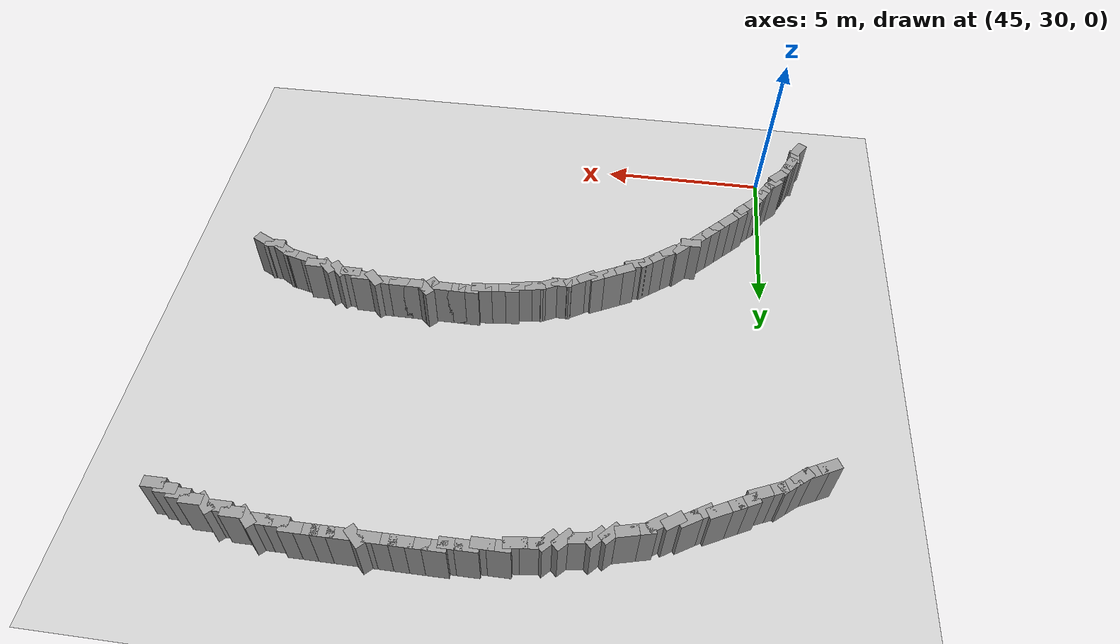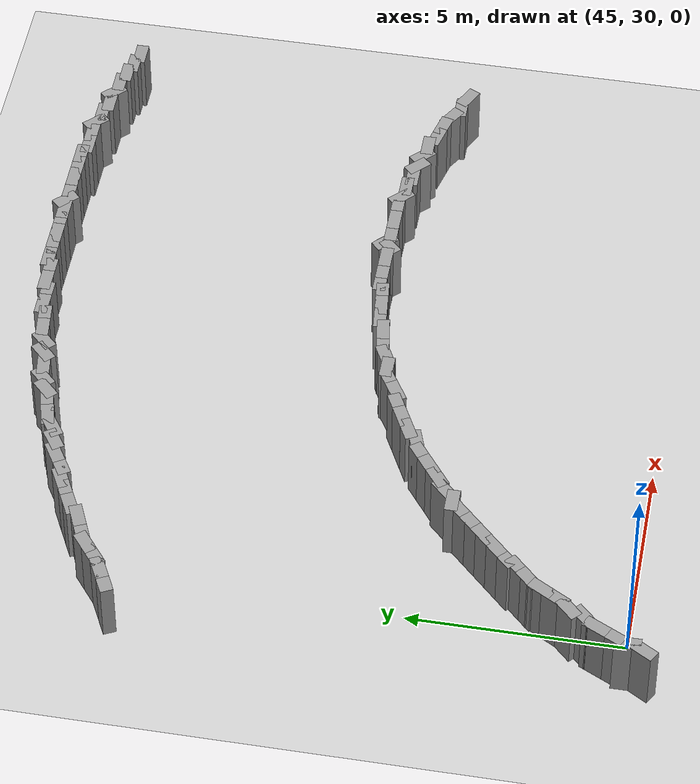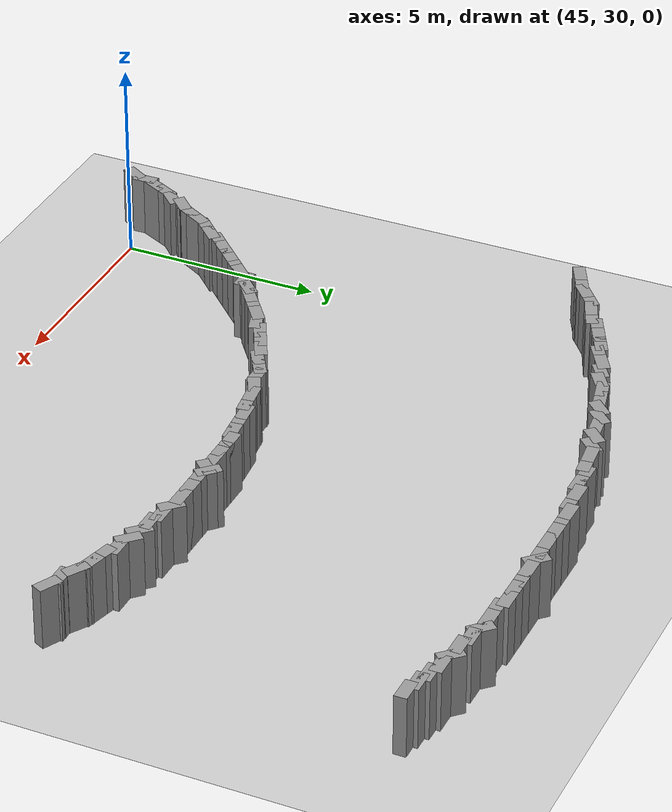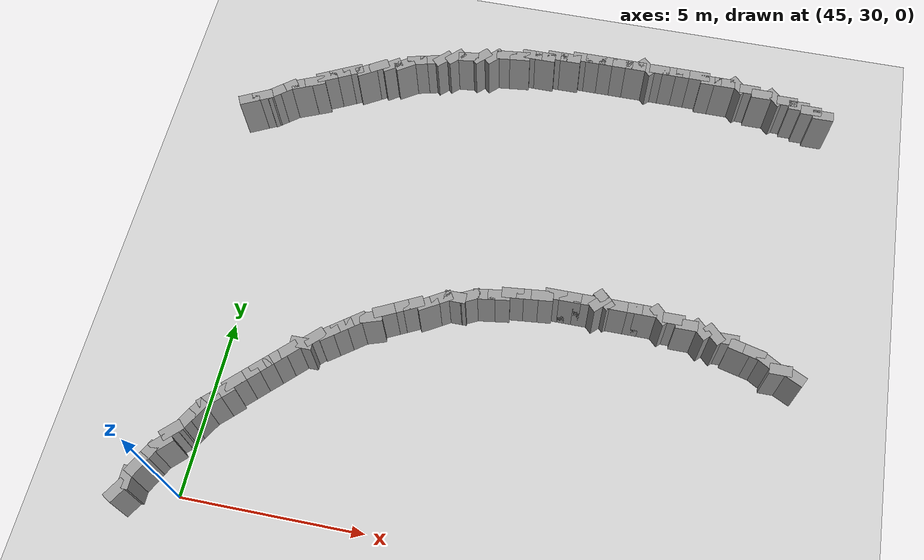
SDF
<sdf version="1.5">
 <world name="test_figure8">
  <include><uri>model://sun</uri></include>
  <include><uri>model://ground_plane</uri></include>
  <model name="curbL_326">
   <static>true</static>
   <pose>60.377 44.200 0.750 0 0 3.142</pose>
   <link name="link">
    <collision name="collision"><geometry><box><size>0.600 0.300 1.500</size></box></geometry></collision>
    <visual name="visual">
     <geometry><box><size>0.600 0.300 1.500</size></box></geometry>
     <material><ambient>0.6 0.6 0.6 1</ambient><diffuse>0.6 0.6 0.6 1</diffuse></material>
    </visual>
   </link>
  </model>
  <model name="curbL_327">
   <static>true</static>
   <pose>60.019 44.300 0.750 0 0 3.142</pose>
   <link name="link">
    <collision name="collision"><geometry><box><size>0.600 0.300 1.500</size></box></geometry></collision>
    <visual name="visual">
     <geometry><box><size>0.600 0.300 1.500</size></box></geometry>
     <material><ambient>0.6 0.6 0.6 1</ambient><diffuse>0.6 0.6 0.6 1</diffuse></material>
    </visual>
   </link>
  </model>
  <model name="curbL_328">
   <static>true</static>
   <pose>59.660 44.400 0.750 0 0 3.142</pose>
   <link name="link">
    <collision name="collision"><geometry><box><size>0.600 0.300 1.500</size></box></geometry></collision>
    <visual name="visual">
     <geometry><box><size>0.600 0.300 1.500</size></box></geometry>
     <material><ambient>0.6 0.6 0.6 1</ambient><diffuse>0.6 0.6 0.6 1</diffuse></material>
    </visual>
   </link>
  </model>
  <model name="curbL_329">
   <static>true</static>
   <pose>59.301 44.500 0.750 0 0 3.142</pose>
   <link name="link">
    <collision name="collision"><geometry><box><size>0.600 0.300 1.500</size></box></geometry></collision>
    <visual name="visual">
     <geometry><box><size>0.600 0.300 1.500</size></box></geometry>
     <material><ambient>0.6 0.6 0.6 1</ambient><diffuse>0.6 0.6 0.6 1</diffuse></material>
    </visual>
   </link>
  </model>
  <model name="curbL_330">
   <static>true</static>
   <pose>58.930 44.570 0.750 0 0 2.356</pose>
   <link name="link">
    <collision name="collision"><geometry><box><size>0.600 0.300 1.500</size></box></geometry></collision>
    <visual name="visual">
     <geometry><box><size>0.600 0.300 1.500</size></box></geometry>
     <material><ambient>0.6 0.6 0.6 1</ambient><diffuse>0.6 0.6 0.6 1</diffuse></material>
    </visual>
   </link>
  </model>
  <model name="curbL_331">
   <static>true</static>
   <pose>58.543 44.600 0.750 0 0 3.142</pose>
   <link name="link">
    <collision name="collision"><geometry><box><size>0.600 0.300 1.500</size></box></geometry></collision>
    <visual name="visual">
     <geometry><box><size>0.600 0.300 1.500</size></box></geometry>
     <material><ambient>0.6 0.6 0.6 1</ambient><diffuse>0.6 0.6 0.6 1</diffuse></material>
    </visual>
   </link>
  </model>
  <model name="curbL_332">
   <static>true</static>
   <pose>58.184 44.700 0.750 0 0 3.142</pose>
   <link name="link">
    <collision name="collision"><geometry><box><size>0.600 0.300 1.500</size></box></geometry></collision>
    <visual name="visual">
     <geometry><box><size>0.600 0.300 1.500</size></box></geometry>
     <material><ambient>0.6 0.6 0.6 1</ambient><diffuse>0.6 0.6 0.6 1</diffuse></material>
    </visual>
   </link>
  </model>
  <model name="curbL_333">
   <static>true</static>
   <pose>57.818 44.782 0.750 0 0 2.356</pose>
   <link name="link">
    <collision name="collision"><geometry><box><size>0.600 0.300 1.500</size></box></geometry></collision>
    <visual name="visual">
     <geometry><box><size>0.600 0.300 1.500</size></box></geometry>
     <material><ambient>0.6 0.6 0.6 1</ambient><diffuse>0.6 0.6 0.6 1</diffuse></material>
    </visual>
   </link>
  </model>
  <model name="curbL_334">
   <static>true</static>
   <pose>57.426 44.800 0.750 0 0 3.142</pose>
   <link name="link">
    <collision name="collision"><geometry><box><size>0.600 0.300 1.500</size></box></geometry></collision>
    <visual name="visual">
     <geometry><box><size>0.600 0.300 1.500</size></box></geometry>
     <material><ambient>0.6 0.6 0.6 1</ambient><diffuse>0.6 0.6 0.6 1</diffuse></material>
    </visual>
   </link>
  </model>
  <model name="curbL_335">
   <static>true</static>
   <pose>57.026 44.800 0.750 0 0 3.142</pose>
   <link name="link">
    <collision name="collision"><geometry><box><size>0.600 0.300 1.500</size></box></geometry></collision>
    <visual name="visual">
     <geometry><box><size>0.600 0.300 1.500</size></box></geometry>
     <material><ambient>0.6 0.6 0.6 1</ambient><diffuse>0.6 0.6 0.6 1</diffuse></material>
    </visual>
   </link>
  </model>
  <model name="curbL_336">
   <static>true</static>
   <pose>56.667 44.900 0.750 0 0 3.142</pose>
   <link name="link">
    <collision name="collision"><geometry><box><size>0.600 0.300 1.500</size></box></geometry></collision>
    <visual name="visual">
     <geometry><box><size>0.600 0.300 1.500</size></box></geometry>
     <material><ambient>0.6 0.6 0.6 1</ambient><diffuse>0.6 0.6 0.6 1</diffuse></material>
    </visual>
   </link>
  </model>
  <model name="curbL_337">
   <static>true</static>
   <pose>56.267 44.900 0.750 0 0 3.142</pose>
   <link name="link">
    <collision name="collision"><geometry><box><size>0.600 0.300 1.500</size></box></geometry></collision>
    <visual name="visual">
     <geometry><box><size>0.600 0.300 1.500</size></box></geometry>
     <material><ambient>0.6 0.6 0.6 1</ambient><diffuse>0.6 0.6 0.6 1</diffuse></material>
    </visual>
   </link>
  </model>
  <model name="curbL_338">
   <static>true</static>
   <pose>55.867 44.900 0.750 0 0 3.142</pose>
   <link name="link">
    <collision name="collision"><geometry><box><size>0.600 0.300 1.500</size></box></geometry></collision>
    <visual name="visual">
     <geometry><box><size>0.600 0.300 1.500</size></box></geometry>
     <material><ambient>0.6 0.6 0.6 1</ambient><diffuse>0.6 0.6 0.6 1</diffuse></material>
    </visual>
   </link>
  </model>
  <model name="curbL_339">
   <static>true</static>
   <pose>55.467 44.900 0.750 0 0 3.142</pose>
   <link name="link">
    <collision name="collision"><geometry><box><size>0.600 0.300 1.500</size></box></geometry></collision>
    <visual name="visual">
     <geometry><box><size>0.600 0.300 1.500</size></box></geometry>
     <material><ambient>0.6 0.6 0.6 1</ambient><diffuse>0.6 0.6 0.6 1</diffuse></material>
    </visual>
   </link>
  </model>
  <model name="curbL_340">
   <static>true</static>
   <pose>55.077 44.923 0.750 0 0 2.356</pose>
   <link name="link">
    <collision name="collision"><geometry><box><size>0.600 0.300 1.500</size></box></geometry></collision>
    <visual name="visual">
     <geometry><box><size>0.600 0.300 1.500</size></box></geometry>
     <material><ambient>0.6 0.6 0.6 1</ambient><diffuse>0.6 0.6 0.6 1</diffuse></material>
    </visual>
   </link>
  </model>
  <model name="curbL_341">
   <static>true</static>
   <pose>54.750 44.900 0.750 0 0 3.142</pose>
   <link name="link">
    <collision name="collision"><geometry><box><size>0.600 0.300 1.500</size></box></geometry></collision>
    <visual name="visual">
     <geometry><box><size>0.600 0.300 1.500</size></box></geometry>
     <material><ambient>0.6 0.6 0.6 1</ambient><diffuse>0.6 0.6 0.6 1</diffuse></material>
    </visual>
   </link>
  </model>
  <model name="curbL_342">
   <static>true</static>
   <pose>54.350 44.900 0.750 0 0 3.142</pose>
   <link name="link">
    <collision name="collision"><geometry><box><size>0.600 0.300 1.500</size></box></geometry></collision>
    <visual name="visual">
     <geometry><box><size>0.600 0.300 1.500</size></box></geometry>
     <material><ambient>0.6 0.6 0.6 1</ambient><diffuse>0.6 0.6 0.6 1</diffuse></material>
    </visual>
   </link>
  </model>
  <model name="curbL_343">
   <static>true</static>
   <pose>53.950 44.900 0.750 0 0 3.142</pose>
   <link name="link">
    <collision name="collision"><geometry><box><size>0.600 0.300 1.500</size></box></geometry></collision>
    <visual name="visual">
     <geometry><box><size>0.600 0.300 1.500</size></box></geometry>
     <material><ambient>0.6 0.6 0.6 1</ambient><diffuse>0.6 0.6 0.6 1</diffuse></material>
    </visual>
   </link>
  </model>
  <model name="curbL_344">
   <static>true</static>
   <pose>53.550 44.900 0.750 0 0 3.142</pose>
   <link name="link">
    <collision name="collision"><geometry><box><size>0.600 0.300 1.500</size></box></geometry></collision>
    <visual name="visual">
     <geometry><box><size>0.600 0.300 1.500</size></box></geometry>
     <material><ambient>0.6 0.6 0.6 1</ambient><diffuse>0.6 0.6 0.6 1</diffuse></material>
    </visual>
   </link>
  </model>
  <model name="curbL_345">
   <static>true</static>
   <pose>53.150 44.900 0.750 0 0 3.142</pose>
   <link name="link">
    <collision name="collision"><geometry><box><size>0.600 0.300 1.500</size></box></geometry></collision>
    <visual name="visual">
     <geometry><box><size>0.600 0.300 1.500</size></box></geometry>
     <material><ambient>0.6 0.6 0.6 1</ambient><diffuse>0.6 0.6 0.6 1</diffuse></material>
    </visual>
   </link>
  </model>
  <model name="curbL_346">
   <static>true</static>
   <pose>52.791 44.800 0.750 0 0 3.142</pose>
   <link name="link">
    <collision name="collision"><geometry><box><size>0.600 0.300 1.500</size></box></geometry></collision>
    <visual name="visual">
     <geometry><box><size>0.600 0.300 1.500</size></box></geometry>
     <material><ambient>0.6 0.6 0.6 1</ambient><diffuse>0.6 0.6 0.6 1</diffuse></material>
    </visual>
   </link>
  </model>
  <model name="curbL_347">
   <static>true</static>
   <pose>52.391 44.800 0.750 0 0 3.142</pose>
   <link name="link">
    <collision name="collision"><geometry><box><size>0.600 0.300 1.500</size></box></geometry></collision>
    <visual name="visual">
     <geometry><box><size>0.600 0.300 1.500</size></box></geometry>
     <material><ambient>0.6 0.6 0.6 1</ambient><diffuse>0.6 0.6 0.6 1</diffuse></material>
    </visual>
   </link>
  </model>
  <model name="curbL_348">
   <static>true</static>
   <pose>52.033 44.700 0.750 0 0 3.142</pose>
   <link name="link">
    <collision name="collision"><geometry><box><size>0.600 0.300 1.500</size></box></geometry></collision>
    <visual name="visual">
     <geometry><box><size>0.600 0.300 1.500</size></box></geometry>
     <material><ambient>0.6 0.6 0.6 1</ambient><diffuse>0.6 0.6 0.6 1</diffuse></material>
    </visual>
   </link>
  </model>
  <model name="curbL_349">
   <static>true</static>
   <pose>51.633 44.700 0.750 0 0 3.142</pose>
   <link name="link">
    <collision name="collision"><geometry><box><size>0.600 0.300 1.500</size></box></geometry></collision>
    <visual name="visual">
     <geometry><box><size>0.600 0.300 1.500</size></box></geometry>
     <material><ambient>0.6 0.6 0.6 1</ambient><diffuse>0.6 0.6 0.6 1</diffuse></material>
    </visual>
   </link>
  </model>
  <model name="curbL_350">
   <static>true</static>
   <pose>51.276 44.575 0.750 0 0 -3.031</pose>
   <link name="link">
    <collision name="collision"><geometry><box><size>0.600 0.300 1.500</size></box></geometry></collision>
    <visual name="visual">
     <geometry><box><size>0.600 0.300 1.500</size></box></geometry>
     <material><ambient>0.6 0.6 0.6 1</ambient><diffuse>0.6 0.6 0.6 1</diffuse></material>
    </visual>
   </link>
  </model>
  <model name="curbL_351">
   <static>true</static>
   <pose>50.878 44.531 0.750 0 0 -3.031</pose>
   <link name="link">
    <collision name="collision"><geometry><box><size>0.600 0.300 1.500</size></box></geometry></collision>
    <visual name="visual">
     <geometry><box><size>0.600 0.300 1.500</size></box></geometry>
     <material><ambient>0.6 0.6 0.6 1</ambient><diffuse>0.6 0.6 0.6 1</diffuse></material>
    </visual>
   </link>
  </model>
  <model name="curbL_352">
   <static>true</static>
   <pose>50.515 44.415 0.750 0 0 -2.356</pose>
   <link name="link">
    <collision name="collision"><geometry><box><size>0.600 0.300 1.500</size></box></geometry></collision>
    <visual name="visual">
     <geometry><box><size>0.600 0.300 1.500</size></box></geometry>
     <material><ambient>0.6 0.6 0.6 1</ambient><diffuse>0.6 0.6 0.6 1</diffuse></material>
    </visual>
   </link>
  </model>
  <model name="curbL_353">
   <static>true</static>
   <pose>50.144 44.344 0.750 0 0 -2.356</pose>
   <link name="link">
    <collision name="collision"><geometry><box><size>0.600 0.300 1.500</size></box></geometry></collision>
    <visual name="visual">
     <geometry><box><size>0.600 0.300 1.500</size></box></geometry>
     <material><ambient>0.6 0.6 0.6 1</ambient><diffuse>0.6 0.6 0.6 1</diffuse></material>
    </visual>
   </link>
  </model>
  <model name="curbL_354">
   <static>true</static>
   <pose>49.766 44.252 0.750 0 0 -3.000</pose>
   <link name="link">
    <collision name="collision"><geometry><box><size>0.600 0.300 1.500</size></box></geometry></collision>
    <visual name="visual">
     <geometry><box><size>0.600 0.300 1.500</size></box></geometry>
     <material><ambient>0.6 0.6 0.6 1</ambient><diffuse>0.6 0.6 0.6 1</diffuse></material>
    </visual>
   </link>
  </model>
  <model name="curbL_355">
   <static>true</static>
   <pose>49.379 44.179 0.750 0 0 -2.356</pose>
   <link name="link">
    <collision name="collision"><geometry><box><size>0.600 0.300 1.500</size></box></geometry></collision>
    <visual name="visual">
     <geometry><box><size>0.600 0.300 1.500</size></box></geometry>
     <material><ambient>0.6 0.6 0.6 1</ambient><diffuse>0.6 0.6 0.6 1</diffuse></material>
    </visual>
   </link>
  </model>
  <model name="curbL_356">
   <static>true</static>
   <pose>49.037 44.037 0.750 0 0 -2.356</pose>
   <link name="link">
    <collision name="collision"><geometry><box><size>0.600 0.300 1.500</size></box></geometry></collision>
    <visual name="visual">
     <geometry><box><size>0.600 0.300 1.500</size></box></geometry>
     <material><ambient>0.6 0.6 0.6 1</ambient><diffuse>0.6 0.6 0.6 1</diffuse></material>
    </visual>
   </link>
  </model>
  <model name="curbL_357">
   <static>true</static>
   <pose>48.663 43.916 0.750 0 0 -2.897</pose>
   <link name="link">
    <collision name="collision"><geometry><box><size>0.600 0.300 1.500</size></box></geometry></collision>
    <visual name="visual">
     <geometry><box><size>0.600 0.300 1.500</size></box></geometry>
     <material><ambient>0.6 0.6 0.6 1</ambient><diffuse>0.6 0.6 0.6 1</diffuse></material>
    </visual>
   </link>
  </model>
  <model name="curbL_358">
   <static>true</static>
   <pose>48.275 43.819 0.750 0 0 -2.897</pose>
   <link name="link">
    <collision name="collision"><geometry><box><size>0.600 0.300 1.500</size></box></geometry></collision>
    <visual name="visual">
     <geometry><box><size>0.600 0.300 1.500</size></box></geometry>
     <material><ambient>0.6 0.6 0.6 1</ambient><diffuse>0.6 0.6 0.6 1</diffuse></material>
    </visual>
   </link>
  </model>
  <model name="curbL_359">
   <static>true</static>
   <pose>47.931 43.621 0.750 0 0 -2.554</pose>
   <link name="link">
    <collision name="collision"><geometry><box><size>0.600 0.300 1.500</size></box></geometry></collision>
    <visual name="visual">
     <geometry><box><size>0.600 0.300 1.500</size></box></geometry>
     <material><ambient>0.6 0.6 0.6 1</ambient><diffuse>0.6 0.6 0.6 1</diffuse></material>
    </visual>
   </link>
  </model>
  <model name="curbL_360">
   <static>true</static>
   <pose>47.565 43.510 0.750 0 0 -2.554</pose>
   <link name="link">
    <collision name="collision"><geometry><box><size>0.600 0.300 1.500</size></box></geometry></collision>
    <visual name="visual">
     <geometry><box><size>0.600 0.300 1.500</size></box></geometry>
     <material><ambient>0.6 0.6 0.6 1</ambient><diffuse>0.6 0.6 0.6 1</diffuse></material>
    </visual>
   </link>
  </model>
  <model name="curbL_361">
   <static>true</static>
   <pose>47.199 43.399 0.750 0 0 -2.601</pose>
   <link name="link">
    <collision name="collision"><geometry><box><size>0.600 0.300 1.500</size></box></geometry></collision>
    <visual name="visual">
     <geometry><box><size>0.600 0.300 1.500</size></box></geometry>
     <material><ambient>0.6 0.6 0.6 1</ambient><diffuse>0.6 0.6 0.6 1</diffuse></material>
    </visual>
   </link>
  </model>
  <model name="curbL_362">
   <static>true</static>
   <pose>46.856 43.193 0.750 0 0 -2.601</pose>
   <link name="link">
    <collision name="collision"><geometry><box><size>0.600 0.300 1.500</size></box></geometry></collision>
    <visual name="visual">
     <geometry><box><size>0.600 0.300 1.500</size></box></geometry>
     <material><ambient>0.6 0.6 0.6 1</ambient><diffuse>0.6 0.6 0.6 1</diffuse></material>
    </visual>
   </link>
  </model>
  <model name="curbL_363">
   <static>true</static>
   <pose>46.483 43.092 0.750 0 0 -2.678</pose>
   <link name="link">
    <collision name="collision"><geometry><box><size>0.600 0.300 1.500</size></box></geometry></collision>
    <visual name="visual">
     <geometry><box><size>0.600 0.300 1.500</size></box></geometry>
     <material><ambient>0.6 0.6 0.6 1</ambient><diffuse>0.6 0.6 0.6 1</diffuse></material>
    </visual>
   </link>
  </model>
  <model name="curbL_364">
   <static>true</static>
   <pose>46.126 42.913 0.750 0 0 -2.678</pose>
   <link name="link">
    <collision name="collision"><geometry><box><size>0.600 0.300 1.500</size></box></geometry></collision>
    <visual name="visual">
     <geometry><box><size>0.600 0.300 1.500</size></box></geometry>
     <material><ambient>0.6 0.6 0.6 1</ambient><diffuse>0.6 0.6 0.6 1</diffuse></material>
    </visual>
   </link>
  </model>
  <model name="curbL_365">
   <static>true</static>
   <pose>45.768 42.734 0.750 0 0 -2.678</pose>
   <link name="link">
    <collision name="collision"><geometry><box><size>0.600 0.300 1.500</size></box></geometry></collision>
    <visual name="visual">
     <geometry><box><size>0.600 0.300 1.500</size></box></geometry>
     <material><ambient>0.6 0.6 0.6 1</ambient><diffuse>0.6 0.6 0.6 1</diffuse></material>
    </visual>
   </link>
  </model>
  <model name="curbL_366">
   <static>true</static>
   <pose>45.462 42.484 0.750 0 0 -2.737</pose>
   <link name="link">
    <collision name="collision"><geometry><box><size>0.600 0.300 1.500</size></box></geometry></collision>
    <visual name="visual">
     <geometry><box><size>0.600 0.300 1.500</size></box></geometry>
     <material><ambient>0.6 0.6 0.6 1</ambient><diffuse>0.6 0.6 0.6 1</diffuse></material>
    </visual>
   </link>
  </model>
  <model name="curbL_367">
   <static>true</static>
   <pose>45.094 42.326 0.750 0 0 -2.737</pose>
   <link name="link">
    <collision name="collision"><geometry><box><size>0.600 0.300 1.500</size></box></geometry></collision>
    <visual name="visual">
     <geometry><box><size>0.600 0.300 1.500</size></box></geometry>
     <material><ambient>0.6 0.6 0.6 1</ambient><diffuse>0.6 0.6 0.6 1</diffuse></material>
    </visual>
   </link>
  </model>
  <model name="curbL_368">
   <static>true</static>
   <pose>44.738 42.150 0.750 0 0 -2.467</pose>
   <link name="link">
    <collision name="collision"><geometry><box><size>0.600 0.300 1.500</size></box></geometry></collision>
    <visual name="visual">
     <geometry><box><size>0.600 0.300 1.500</size></box></geometry>
     <material><ambient>0.6 0.6 0.6 1</ambient><diffuse>0.6 0.6 0.6 1</diffuse></material>
    </visual>
   </link>
  </model>
  <model name="curbL_369">
   <static>true</static>
   <pose>44.425 41.900 0.750 0 0 -2.467</pose>
   <link name="link">
    <collision name="collision"><geometry><box><size>0.600 0.300 1.500</size></box></geometry></collision>
    <visual name="visual">
     <geometry><box><size>0.600 0.300 1.500</size></box></geometry>
     <material><ambient>0.6 0.6 0.6 1</ambient><diffuse>0.6 0.6 0.6 1</diffuse></material>
    </visual>
   </link>
  </model>
  <model name="curbL_370">
   <static>true</static>
   <pose>44.086 41.693 0.750 0 0 -2.678</pose>
   <link name="link">
    <collision name="collision"><geometry><box><size>0.600 0.300 1.500</size></box></geometry></collision>
    <visual name="visual">
     <geometry><box><size>0.600 0.300 1.500</size></box></geometry>
     <material><ambient>0.6 0.6 0.6 1</ambient><diffuse>0.6 0.6 0.6 1</diffuse></material>
    </visual>
   </link>
  </model>
  <model name="curbL_371">
   <static>true</static>
   <pose>43.728 41.514 0.750 0 0 -2.678</pose>
   <link name="link">
    <collision name="collision"><geometry><box><size>0.600 0.300 1.500</size></box></geometry></collision>
    <visual name="visual">
     <geometry><box><size>0.600 0.300 1.500</size></box></geometry>
     <material><ambient>0.6 0.6 0.6 1</ambient><diffuse>0.6 0.6 0.6 1</diffuse></material>
    </visual>
   </link>
  </model>
  <model name="curbR_0">
   <static>true</static>
   <pose>55.000 37.100 0.750 0 0 -0.785</pose>
   <link name="link">
    <collision name="collision"><geometry><box><size>0.600 0.300 1.500</size></box></geometry></collision>
    <visual name="visual">
     <geometry><box><size>0.600 0.300 1.500</size></box></geometry>
     <material><ambient>0.6 0.6 0.6 1</ambient><diffuse>0.6 0.6 0.6 1</diffuse></material>
    </visual>
   </link>
  </model>
  <model name="curbR_1">
   <static>true</static>
   <pose>55.359 37.000 0.750 0 0 0.000</pose>
   <link name="link">
    <collision name="collision"><geometry><box><size>0.600 0.300 1.500</size></box></geometry></collision>
    <visual name="visual">
     <geometry><box><size>0.600 0.300 1.500</size></box></geometry>
     <material><ambient>0.6 0.6 0.6 1</ambient><diffuse>0.6 0.6 0.6 1</diffuse></material>
    </visual>
   </link>
  </model>
  <model name="curbR_2">
   <static>true</static>
   <pose>55.759 37.000 0.750 0 0 0.000</pose>
   <link name="link">
    <collision name="collision"><geometry><box><size>0.600 0.300 1.500</size></box></geometry></collision>
    <visual name="visual">
     <geometry><box><size>0.600 0.300 1.500</size></box></geometry>
     <material><ambient>0.6 0.6 0.6 1</ambient><diffuse>0.6 0.6 0.6 1</diffuse></material>
    </visual>
   </link>
  </model>
  <model name="curbR_3">
   <static>true</static>
   <pose>56.159 37.000 0.750 0 0 0.000</pose>
   <link name="link">
    <collision name="collision"><geometry><box><size>0.600 0.300 1.500</size></box></geometry></collision>
    <visual name="visual">
     <geometry><box><size>0.600 0.300 1.500</size></box></geometry>
     <material><ambient>0.6 0.6 0.6 1</ambient><diffuse>0.6 0.6 0.6 1</diffuse></material>
    </visual>
   </link>
  </model>
  <model name="curbR_4">
   <static>true</static>
   <pose>56.541 36.959 0.750 0 0 -0.785</pose>
   <link name="link">
    <collision name="collision"><geometry><box><size>0.600 0.300 1.500</size></box></geometry></collision>
    <visual name="visual">
     <geometry><box><size>0.600 0.300 1.500</size></box></geometry>
     <material><ambient>0.6 0.6 0.6 1</ambient><diffuse>0.6 0.6 0.6 1</diffuse></material>
    </visual>
   </link>
  </model>
  <model name="curbR_5">
   <static>true</static>
   <pose>56.917 36.900 0.750 0 0 0.000</pose>
   <link name="link">
    <collision name="collision"><geometry><box><size>0.600 0.300 1.500</size></box></geometry></collision>
    <visual name="visual">
     <geometry><box><size>0.600 0.300 1.500</size></box></geometry>
     <material><ambient>0.6 0.6 0.6 1</ambient><diffuse>0.6 0.6 0.6 1</diffuse></material>
    </visual>
   </link>
  </model>
  <model name="curbR_6">
   <static>true</static>
   <pose>57.276 36.800 0.750 0 0 0.000</pose>
   <link name="link">
    <collision name="collision"><geometry><box><size>0.600 0.300 1.500</size></box></geometry></collision>
    <visual name="visual">
     <geometry><box><size>0.600 0.300 1.500</size></box></geometry>
     <material><ambient>0.6 0.6 0.6 1</ambient><diffuse>0.6 0.6 0.6 1</diffuse></material>
    </visual>
   </link>
  </model>
  <model name="curbR_7">
   <static>true</static>
   <pose>57.654 36.746 0.750 0 0 -0.785</pose>
   <link name="link">
    <collision name="collision"><geometry><box><size>0.600 0.300 1.500</size></box></geometry></collision>
    <visual name="visual">
     <geometry><box><size>0.600 0.300 1.500</size></box></geometry>
     <material><ambient>0.6 0.6 0.6 1</ambient><diffuse>0.6 0.6 0.6 1</diffuse></material>
    </visual>
   </link>
  </model>
  <model name="curbR_8">
   <static>true</static>
   <pose>58.024 36.676 0.750 0 0 -0.785</pose>
   <link name="link">
    <collision name="collision"><geometry><box><size>0.600 0.300 1.500</size></box></geometry></collision>
    <visual name="visual">
     <geometry><box><size>0.600 0.300 1.500</size></box></geometry>
     <material><ambient>0.6 0.6 0.6 1</ambient><diffuse>0.6 0.6 0.6 1</diffuse></material>
    </visual>
   </link>
  </model>
  <model name="curbR_9">
   <static>true</static>
   <pose>58.393 36.600 0.750 0 0 0.000</pose>
   <link name="link">
    <collision name="collision"><geometry><box><size>0.600 0.300 1.500</size></box></geometry></collision>
    <visual name="visual">
     <geometry><box><size>0.600 0.300 1.500</size></box></geometry>
     <material><ambient>0.6 0.6 0.6 1</ambient><diffuse>0.6 0.6 0.6 1</diffuse></material>
    </visual>
   </link>
  </model>
  <model name="curbR_10">
   <static>true</static>
   <pose>58.744 36.439 0.750 0 0 -0.245</pose>
   <link name="link">
    <collision name="collision"><geometry><box><size>0.600 0.300 1.500</size></box></geometry></collision>
    <visual name="visual">
     <geometry><box><size>0.600 0.300 1.500</size></box></geometry>
     <material><ambient>0.6 0.6 0.6 1</ambient><diffuse>0.6 0.6 0.6 1</diffuse></material>
    </visual>
   </link>
  </model>
  <model name="curbR_11">
   <static>true</static>
   <pose>59.132 36.342 0.750 0 0 -0.245</pose>
   <link name="link">
    <collision name="collision"><geometry><box><size>0.600 0.300 1.500</size></box></geometry></collision>
    <visual name="visual">
     <geometry><box><size>0.600 0.300 1.500</size></box></geometry>
     <material><ambient>0.6 0.6 0.6 1</ambient><diffuse>0.6 0.6 0.6 1</diffuse></material>
    </visual>
   </link>
  </model>
  <model name="curbR_12">
   <static>true</static>
   <pose>59.495 36.183 0.750 0 0 -0.540</pose>
   <link name="link">
    <collision name="collision"><geometry><box><size>0.600 0.300 1.500</size></box></geometry></collision>
    <visual name="visual">
     <geometry><box><size>0.600 0.300 1.500</size></box></geometry>
     <material><ambient>0.6 0.6 0.6 1</ambient><diffuse>0.6 0.6 0.6 1</diffuse></material>
    </visual>
   </link>
  </model>
  <model name="curbR_13">
   <static>true</static>
   <pose>59.844 36.000 0.750 0 0 0.000</pose>
   <link name="link">
    <collision name="collision"><geometry><box><size>0.600 0.300 1.500</size></box></geometry></collision>
    <visual name="visual">
     <geometry><box><size>0.600 0.300 1.500</size></box></geometry>
     <material><ambient>0.6 0.6 0.6 1</ambient><diffuse>0.6 0.6 0.6 1</diffuse></material>
    </visual>
   </link>
  </model>
  <model name="curbR_14">
   <static>true</static>
   <pose>60.218 35.891 0.750 0 0 -0.464</pose>
   <link name="link">
    <collision name="collision"><geometry><box><size>0.600 0.300 1.500</size></box></geometry></collision>
    <visual name="visual">
     <geometry><box><size>0.600 0.300 1.500</size></box></geometry>
     <material><ambient>0.6 0.6 0.6 1</ambient><diffuse>0.6 0.6 0.6 1</diffuse></material>
    </visual>
   </link>
  </model>
  <model name="curbR_158">
   <static>true</static>
   <pose>43.866 29.577 0.750 0 0 1.030</pose>
   <link name="link">
    <collision name="collision"><geometry><box><size>0.600 0.300 1.500</size></box></geometry></collision>
    <visual name="visual">
     <geometry><box><size>0.600 0.300 1.500</size></box></geometry>
     <material><ambient>0.6 0.6 0.6 1</ambient><diffuse>0.6 0.6 0.6 1</diffuse></material>
    </visual>
   </link>
  </model>
  <model name="curbR_159">
   <static>true</static>
   <pose>44.000 29.940 0.750 0 0 1.571</pose>
   <link name="link">
    <collision name="collision"><geometry><box><size>0.600 0.300 1.500</size></box></geometry></collision>
    <visual name="visual">
     <geometry><box><size>0.600 0.300 1.500</size></box></geometry>
     <material><ambient>0.6 0.6 0.6 1</ambient><diffuse>0.6 0.6 0.6 1</diffuse></material>
    </visual>
   </link>
  </model>
  <model name="curbR_160">
   <static>true</static>
   <pose>44.152 30.304 0.750 0 0 1.107</pose>
   <link name="link">
    <collision name="collision"><geometry><box><size>0.600 0.300 1.500</size></box></geometry></collision>
    <visual name="visual">
     <geometry><box><size>0.600 0.300 1.500</size></box></geometry>
     <material><ambient>0.6 0.6 0.6 1</ambient><diffuse>0.6 0.6 0.6 1</diffuse></material>
    </visual>
   </link>
  </model>
  <model name="curbR_161">
   <static>true</static>
   <pose>44.331 30.662 0.750 0 0 1.107</pose>
   <link name="link">
    <collision name="collision"><geometry><box><size>0.600 0.300 1.500</size></box></geometry></collision>
    <visual name="visual">
     <geometry><box><size>0.600 0.300 1.500</size></box></geometry>
     <material><ambient>0.6 0.6 0.6 1</ambient><diffuse>0.6 0.6 0.6 1</diffuse></material>
    </visual>
   </link>
  </model>
  <model name="curbR_162">
   <static>true</static>
   <pose>44.574 30.974 0.750 0 0 0.785</pose>
   <link name="link">
    <collision name="collision"><geometry><box><size>0.600 0.300 1.500</size></box></geometry></collision>
    <visual name="visual">
     <geometry><box><size>0.600 0.300 1.500</size></box></geometry>
     <material><ambient>0.6 0.6 0.6 1</ambient><diffuse>0.6 0.6 0.6 1</diffuse></material>
    </visual>
   </link>
  </model>
  <model name="curbR_163">
   <static>true</static>
   <pose>44.733 31.333 0.750 0 0 0.785</pose>
   <link name="link">
    <collision name="collision"><geometry><box><size>0.600 0.300 1.500</size></box></geometry></collision>
    <visual name="visual">
     <geometry><box><size>0.600 0.300 1.500</size></box></geometry>
     <material><ambient>0.6 0.6 0.6 1</ambient><diffuse>0.6 0.6 0.6 1</diffuse></material>
    </visual>
   </link>
  </model>
  <model name="curbR_164">
   <static>true</static>
   <pose>44.981 31.642 0.750 0 0 1.052</pose>
   <link name="link">
    <collision name="collision"><geometry><box><size>0.600 0.300 1.500</size></box></geometry></collision>
    <visual name="visual">
     <geometry><box><size>0.600 0.300 1.500</size></box></geometry>
     <material><ambient>0.6 0.6 0.6 1</ambient><diffuse>0.6 0.6 0.6 1</diffuse></material>
    </visual>
   </link>
  </model>
  <model name="curbR_165">
   <static>true</static>
   <pose>45.180 31.990 0.750 0 0 1.052</pose>
   <link name="link">
    <collision name="collision"><geometry><box><size>0.600 0.300 1.500</size></box></geometry></collision>
    <visual name="visual">
     <geometry><box><size>0.600 0.300 1.500</size></box></geometry>
     <material><ambient>0.6 0.6 0.6 1</ambient><diffuse>0.6 0.6 0.6 1</diffuse></material>
    </visual>
   </link>
  </model>
  <model name="curbR_166">
   <static>true</static>
   <pose>45.411 32.311 0.750 0 0 0.785</pose>
   <link name="link">
    <collision name="collision"><geometry><box><size>0.600 0.300 1.500</size></box></geometry></collision>
    <visual name="visual">
     <geometry><box><size>0.600 0.300 1.500</size></box></geometry>
     <material><ambient>0.6 0.6 0.6 1</ambient><diffuse>0.6 0.6 0.6 1</diffuse></material>
    </visual>
   </link>
  </model>
  <model name="curbR_167">
   <static>true</static>
   <pose>45.694 32.594 0.750 0 0 0.785</pose>
   <link name="link">
    <collision name="collision"><geometry><box><size>0.600 0.300 1.500</size></box></geometry></collision>
    <visual name="visual">
     <geometry><box><size>0.600 0.300 1.500</size></box></geometry>
     <material><ambient>0.6 0.6 0.6 1</ambient><diffuse>0.6 0.6 0.6 1</diffuse></material>
    </visual>
   </link>
  </model>
  <model name="curbR_168">
   <static>true</static>
   <pose>45.906 32.906 0.750 0 0 0.785</pose>
   <link name="link">
    <collision name="collision"><geometry><box><size>0.600 0.300 1.500</size></box></geometry></collision>
    <visual name="visual">
     <geometry><box><size>0.600 0.300 1.500</size></box></geometry>
     <material><ambient>0.6 0.6 0.6 1</ambient><diffuse>0.6 0.6 0.6 1</diffuse></material>
    </visual>
   </link>
  </model>
  <model name="curbR_169">
   <static>true</static>
   <pose>46.189 33.189 0.750 0 0 0.785</pose>
   <link name="link">
    <collision name="collision"><geometry><box><size>0.600 0.300 1.500</size></box></geometry></collision>
    <visual name="visual">
     <geometry><box><size>0.600 0.300 1.500</size></box></geometry>
     <material><ambient>0.6 0.6 0.6 1</ambient><diffuse>0.6 0.6 0.6 1</diffuse></material>
    </visual>
   </link>
  </model>
  <model name="curbR_170">
   <static>true</static>
   <pose>46.472 33.472 0.750 0 0 0.785</pose>
   <link name="link">
    <collision name="collision"><geometry><box><size>0.600 0.300 1.500</size></box></geometry></collision>
    <visual name="visual">
     <geometry><box><size>0.600 0.300 1.500</size></box></geometry>
     <material><ambient>0.6 0.6 0.6 1</ambient><diffuse>0.6 0.6 0.6 1</diffuse></material>
    </visual>
   </link>
  </model>
  <model name="curbR_171">
   <static>true</static>
   <pose>46.755 33.755 0.750 0 0 0.785</pose>
   <link name="link">
    <collision name="collision"><geometry><box><size>0.600 0.300 1.500</size></box></geometry></collision>
    <visual name="visual">
     <geometry><box><size>0.600 0.300 1.500</size></box></geometry>
     <material><ambient>0.6 0.6 0.6 1</ambient><diffuse>0.6 0.6 0.6 1</diffuse></material>
    </visual>
   </link>
  </model>
  <model name="curbR_172">
   <static>true</static>
   <pose>47.038 34.038 0.750 0 0 0.785</pose>
   <link name="link">
    <collision name="collision"><geometry><box><size>0.600 0.300 1.500</size></box></geometry></collision>
    <visual name="visual">
     <geometry><box><size>0.600 0.300 1.500</size></box></geometry>
     <material><ambient>0.6 0.6 0.6 1</ambient><diffuse>0.6 0.6 0.6 1</diffuse></material>
    </visual>
   </link>
  </model>
  <model name="curbR_173">
   <static>true</static>
   <pose>47.329 34.300 0.750 0 0 0.000</pose>
   <link name="link">
    <collision name="collision"><geometry><box><size>0.600 0.300 1.500</size></box></geometry></collision>
    <visual name="visual">
     <geometry><box><size>0.600 0.300 1.500</size></box></geometry>
     <material><ambient>0.6 0.6 0.6 1</ambient><diffuse>0.6 0.6 0.6 1</diffuse></material>
    </visual>
   </link>
  </model>
  <model name="curbR_174">
   <static>true</static>
   <pose>47.633 34.533 0.750 0 0 0.785</pose>
   <link name="link">
    <collision name="collision"><geometry><box><size>0.600 0.300 1.500</size></box></geometry></collision>
    <visual name="visual">
     <geometry><box><size>0.600 0.300 1.500</size></box></geometry>
     <material><ambient>0.6 0.6 0.6 1</ambient><diffuse>0.6 0.6 0.6 1</diffuse></material>
    </visual>
   </link>
  </model>
  <model name="curbR_175">
   <static>true</static>
   <pose>47.951 34.738 0.750 0 0 0.644</pose>
   <link name="link">
    <collision name="collision"><geometry><box><size>0.600 0.300 1.500</size></box></geometry></collision>
    <visual name="visual">
     <geometry><box><size>0.600 0.300 1.500</size></box></geometry>
     <material><ambient>0.6 0.6 0.6 1</ambient><diffuse>0.6 0.6 0.6 1</diffuse></material>
    </visual>
   </link>
  </model>
  <model name="curbR_176">
   <static>true</static>
   <pose>48.271 34.978 0.750 0 0 0.644</pose>
   <link name="link">
    <collision name="collision"><geometry><box><size>0.600 0.300 1.500</size></box></geometry></collision>
    <visual name="visual">
     <geometry><box><size>0.600 0.300 1.500</size></box></geometry>
     <material><ambient>0.6 0.6 0.6 1</ambient><diffuse>0.6 0.6 0.6 1</diffuse></material>
    </visual>
   </link>
  </model>
  <model name="curbR_177">
   <static>true</static>
   <pose>48.591 35.218 0.750 0 0 0.644</pose>
   <link name="link">
    <collision name="collision"><geometry><box><size>0.600 0.300 1.500</size></box></geometry></collision>
    <visual name="visual">
     <geometry><box><size>0.600 0.300 1.500</size></box></geometry>
     <material><ambient>0.6 0.6 0.6 1</ambient><diffuse>0.6 0.6 0.6 1</diffuse></material>
    </visual>
   </link>
  </model>
  <model name="curbR_178">
   <static>true</static>
   <pose>48.950 35.383 0.750 0 0 0.322</pose>
   <link name="link">
    <collision name="collision"><geometry><box><size>0.600 0.300 1.500</size></box></geometry></collision>
    <visual name="visual">
     <geometry><box><size>0.600 0.300 1.500</size></box></geometry>
     <material><ambient>0.6 0.6 0.6 1</ambient><diffuse>0.6 0.6 0.6 1</diffuse></material>
    </visual>
   </link>
  </model>
  <model name="curbR_179">
   <static>true</static>
   <pose>49.258 35.629 0.750 0 0 0.464</pose>
   <link name="link">
    <collision name="collision"><geometry><box><size>0.600 0.300 1.500</size></box></geometry></collision>
    <visual name="visual">
     <geometry><box><size>0.600 0.300 1.500</size></box></geometry>
     <material><ambient>0.6 0.6 0.6 1</ambient><diffuse>0.6 0.6 0.6 1</diffuse></material>
    </visual>
   </link>
  </model>
  <model name="curbR_180">
   <static>true</static>
   <pose>49.615 35.808 0.750 0 0 0.464</pose>
   <link name="link">
    <collision name="collision"><geometry><box><size>0.600 0.300 1.500</size></box></geometry></collision>
    <visual name="visual">
     <geometry><box><size>0.600 0.300 1.500</size></box></geometry>
     <material><ambient>0.6 0.6 0.6 1</ambient><diffuse>0.6 0.6 0.6 1</diffuse></material>
    </visual>
   </link>
  </model>
  <model name="curbR_181">
   <static>true</static>
   <pose>49.973 35.987 0.750 0 0 0.464</pose>
   <link name="link">
    <collision name="collision"><geometry><box><size>0.600 0.300 1.500</size></box></geometry></collision>
    <visual name="visual">
     <geometry><box><size>0.600 0.300 1.500</size></box></geometry>
     <material><ambient>0.6 0.6 0.6 1</ambient><diffuse>0.6 0.6 0.6 1</diffuse></material>
    </visual>
   </link>
  </model>
  <model name="curbR_182">
   <static>true</static>
   <pose>50.346 36.087 0.750 0 0 0.540</pose>
   <link name="link">
    <collision name="collision"><geometry><box><size>0.600 0.300 1.500</size></box></geometry></collision>
    <visual name="visual">
     <geometry><box><size>0.600 0.300 1.500</size></box></geometry>
     <material><ambient>0.6 0.6 0.6 1</ambient><diffuse>0.6 0.6 0.6 1</diffuse></material>
    </visual>
   </link>
  </model>
  <model name="curbR_183">
   <static>true</static>
   <pose>50.689 36.293 0.750 0 0 0.540</pose>
   <link name="link">
    <collision name="collision"><geometry><box><size>0.600 0.300 1.500</size></box></geometry></collision>
    <visual name="visual">
     <geometry><box><size>0.600 0.300 1.500</size></box></geometry>
     <material><ambient>0.6 0.6 0.6 1</ambient><diffuse>0.6 0.6 0.6 1</diffuse></material>
    </visual>
   </link>
  </model>
  <model name="curbR_184">
   <static>true</static>
   <pose>51.046 36.400 0.750 0 0 0.000</pose>
   <link name="link">
    <collision name="collision"><geometry><box><size>0.600 0.300 1.500</size></box></geometry></collision>
    <visual name="visual">
     <geometry><box><size>0.600 0.300 1.500</size></box></geometry>
     <material><ambient>0.6 0.6 0.6 1</ambient><diffuse>0.6 0.6 0.6 1</diffuse></material>
    </visual>
   </link>
  </model>
  <model name="curbR_185">
   <static>true</static>
   <pose>51.420 36.510 0.750 0 0 0.464</pose>
   <link name="link">
    <collision name="collision"><geometry><box><size>0.600 0.300 1.500</size></box></geometry></collision>
    <visual name="visual">
     <geometry><box><size>0.600 0.300 1.500</size></box></geometry>
     <material><ambient>0.6 0.6 0.6 1</ambient><diffuse>0.6 0.6 0.6 1</diffuse></material>
    </visual>
   </link>
  </model>
  <model name="curbR_186">
   <static>true</static>
   <pose>51.796 36.628 0.750 0 0 0.142</pose>
   <link name="link">
    <collision name="collision"><geometry><box><size>0.600 0.300 1.500</size></box></geometry></collision>
    <visual name="visual">
     <geometry><box><size>0.600 0.300 1.500</size></box></geometry>
     <material><ambient>0.6 0.6 0.6 1</ambient><diffuse>0.6 0.6 0.6 1</diffuse></material>
    </visual>
   </link>
  </model>
  <model name="curbR_187">
   <static>true</static>
   <pose>52.192 36.685 0.750 0 0 0.142</pose>
   <link name="link">
    <collision name="collision"><geometry><box><size>0.600 0.300 1.500</size></box></geometry></collision>
    <visual name="visual">
     <geometry><box><size>0.600 0.300 1.500</size></box></geometry>
     <material><ambient>0.6 0.6 0.6 1</ambient><diffuse>0.6 0.6 0.6 1</diffuse></material>
    </visual>
   </link>
  </model>
  <model name="curbR_188">
   <static>true</static>
   <pose>52.549 36.815 0.750 0 0 0.100</pose>
   <link name="link">
    <collision name="collision"><geometry><box><size>0.600 0.300 1.500</size></box></geometry></collision>
    <visual name="visual">
     <geometry><box><size>0.600 0.300 1.500</size></box></geometry>
     <material><ambient>0.6 0.6 0.6 1</ambient><diffuse>0.6 0.6 0.6 1</diffuse></material>
    </visual>
   </link>
  </model>
  <model name="curbR_189">
   <static>true</static>
   <pose>52.947 36.855 0.750 0 0 0.100</pose>
   <link name="link">
    <collision name="collision"><geometry><box><size>0.600 0.300 1.500</size></box></geometry></collision>
    <visual name="visual">
     <geometry><box><size>0.600 0.300 1.500</size></box></geometry>
     <material><ambient>0.6 0.6 0.6 1</ambient><diffuse>0.6 0.6 0.6 1</diffuse></material>
    </visual>
   </link>
  </model>
  <model name="curbR_190">
   <static>true</static>
   <pose>53.345 36.895 0.750 0 0 0.100</pose>
   <link name="link">
    <collision name="collision"><geometry><box><size>0.600 0.300 1.500</size></box></geometry></collision>
    <visual name="visual">
     <geometry><box><size>0.600 0.300 1.500</size></box></geometry>
     <material><ambient>0.6 0.6 0.6 1</ambient><diffuse>0.6 0.6 0.6 1</diffuse></material>
    </visual>
   </link>
  </model>
  <model name="curbR_191">
   <static>true</static>
   <pose>53.703 37.000 0.750 0 0 0.000</pose>
   <link name="link">
    <collision name="collision"><geometry><box><size>0.600 0.300 1.500</size></box></geometry></collision>
    <visual name="visual">
     <geometry><box><size>0.600 0.300 1.500</size></box></geometry>
     <material><ambient>0.6 0.6 0.6 1</ambient><diffuse>0.6 0.6 0.6 1</diffuse></material>
    </visual>
   </link>
  </model>
  <model name="curbR_192">
   <static>true</static>
   <pose>54.103 37.000 0.750 0 0 0.000</pose>
   <link name="link">
    <collision name="collision"><geometry><box><size>0.600 0.300 1.500</size></box></geometry></collision>
    <visual name="visual">
     <geometry><box><size>0.600 0.300 1.500</size></box></geometry>
     <material><ambient>0.6 0.6 0.6 1</ambient><diffuse>0.6 0.6 0.6 1</diffuse></material>
    </visual>
   </link>
  </model>
  <model name="curbR_193">
   <static>true</static>
   <pose>54.503 37.000 0.750 0 0 0.000</pose>
   <link name="link">
    <collision name="collision"><geometry><box><size>0.600 0.300 1.500</size></box></geometry></collision>
    <visual name="visual">
     <geometry><box><size>0.600 0.300 1.500</size></box></geometry>
     <material><ambient>0.6 0.6 0.6 1</ambient><diffuse>0.6 0.6 0.6 1</diffuse></material>
    </visual>
   </link>
  </model>
  <model name="curbR_194">
   <static>true</static>
   <pose>54.902 37.002 0.750 0 0 0.785</pose>
   <link name="link">
    <collision name="collision"><geometry><box><size>0.600 0.300 1.500</size></box></geometry></collision>
    <visual name="visual">
     <geometry><box><size>0.600 0.300 1.500</size></box></geometry>
     <material><ambient>0.6 0.6 0.6 1</ambient><diffuse>0.6 0.6 0.6 1</diffuse></material>
    </visual>
   </link>
  </model>
 </world>
</sdf>
